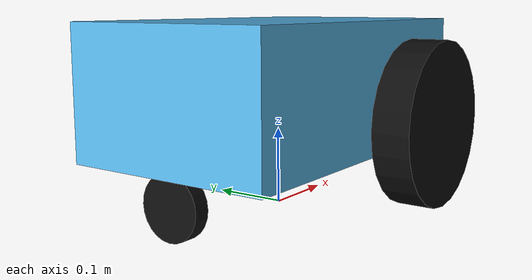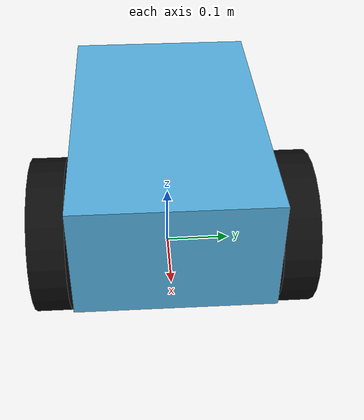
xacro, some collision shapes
<?xml version="1.0"?>
<robot name="pioneer2dx" xmlns:xacro="http://www.ros.org/wiki/xacro">

  <!-- ===== Constants (no launch-time args needed) ===== -->
  <xacro:property name="WHEEL_RADIUS" value="0.11"/>
  <xacro:property name="WHEEL_LENGTH" value="0.05"/>
  <xacro:property name="WHEEL_SEPARATION" value="0.34"/>

  <xacro:property name="BASE_TO_CHASSIS_Z" value="0.16"/>
  <xacro:property name="BASE_TO_LIDAR_X"   value="0.2"/>
  <xacro:property name="BASE_TO_LIDAR_Y"   value="0.0"/>
  <xacro:property name="BASE_TO_LIDAR_Z"   value="0.36"/>
  <xacro:property name="BASE_TO_CAMERA_X"  value="0.2"/>
  <xacro:property name="BASE_TO_CAMERA_Y"  value="0.0"/>
  <xacro:property name="BASE_TO_CAMERA_Z"  value="0.275"/>
  <xacro:property name="BASE_TO_IMU_X"     value="0.0"/>
  <xacro:property name="BASE_TO_IMU_Y"     value="0.0"/>
  <xacro:property name="BASE_TO_IMU_Z"     value="0.2"/>

  <material name="wheel_black">
    <color rgba="0.05 0.05 0.05 1.0"/>
  </material>
  <material name="sensor_gray">
    <color rgba="0.6 0.6 0.6 1.0"/>
  </material>

  <!-- ===== Links ===== -->
  <link name="base_link"/>

  <link name="chassis">
    <inertial>
      <origin xyz="0 0 0" rpy="0 0 0"/>
      <mass value="5.67"/>
      <inertia ixx="0.07" iyy="0.08" izz="0.10" ixy="0" ixz="0" iyz="0"/>
    </inertial>

    <!-- Visual mesh; SDF had +0.04 z visual offset -->
    <visual>
      <origin xyz="0 0 0.04" rpy="0 0 0"/>
      <geometry>
        <mesh filename="package://robot_description/models/pioneer2dx/meshes/chassis.dae"/>
      </geometry>
    </visual>

    <!-- Simple box collision (0.445 x 0.277 x 0.17) -->
    <collision>
      <origin xyz="0 0 0" rpy="0 0 0"/>
      <geometry>
        <box size="0.445 0.277 0.17"/>
      </geometry>
    </collision>
  </link>

  <!-- Sensor frame markers (for RViz) -->

  <!-- Wheels -->
  <link name="left_wheel">
    <visual>
      <origin xyz="0 0 0" rpy="1.5708 0 0"/>
      <geometry><cylinder radius="${WHEEL_RADIUS}" length="${WHEEL_LENGTH}"/></geometry>
      <material name="wheel_black"/>
    </visual>
    <collision>
      <origin xyz="0 0 0" rpy="1.5708 0 0"/>
      <geometry><cylinder radius="${WHEEL_RADIUS}" length="${WHEEL_LENGTH}"/></geometry>
    </collision>
  </link>

  <link name="right_wheel">
    <visual>
      <origin xyz="0 0 0" rpy="1.5708 0 0"/>
      <geometry><cylinder radius="${WHEEL_RADIUS}" length="${WHEEL_LENGTH}"/></geometry>
      <material name="wheel_black"/>
    </visual>
    <collision>
      <origin xyz="0 0 0" rpy="1.5708 0 0"/>
      <geometry><cylinder radius="${WHEEL_RADIUS}" length="${WHEEL_LENGTH}"/></geometry>
    </collision>
  </link>

  <!-- Rear caster (visual only) -->
  <link name="caster_link">
    <visual>
      <!-- Rotate 90° about X so cylinder axis is Y (like your drive wheels) -->
      <origin xyz="0 0 0" rpy="0 1.5708 0"/>
      <geometry>
        <cylinder radius="0.04" length="0.02"/>
      </geometry>
      <material name="wheel_black"/>
    </visual>
  </link>

  <!-- ===== Joints ===== -->
  <joint name="base_to_chassis" type="fixed">
    <parent link="base_link"/>
    <child link="chassis"/>
    <origin xyz="0 0 ${BASE_TO_CHASSIS_Z}" rpy="0 0 0"/>
  </joint>

  <!-- Wheel joints (put wheels below the chassis center) -->
  <joint name="left_wheel_hinge" type="continuous">
    <parent link="chassis"/>
    <child link="left_wheel"/>
    <origin xyz="0.1 0.17 -0.05" rpy="0 0 0"/>
    <axis xyz="0 1 0"/>
  </joint>

  <joint name="right_wheel_hinge" type="continuous">
    <parent link="chassis"/>
    <child link="right_wheel"/>
    <origin xyz="0.1 -0.17 -0.05" rpy="0 0 0"/>
    <axis xyz="0 1 0"/>
  </joint>

  <joint name="chassis_to_caster" type="fixed">
    <parent link="chassis"/>
    <child link="caster_link"/>
    <origin xyz="-0.200 0 -0.12" rpy="0 0 0"/>
  </joint>

</robot>
